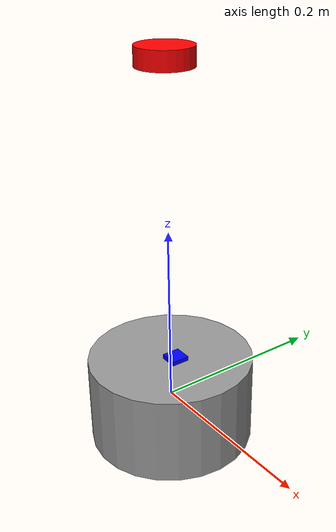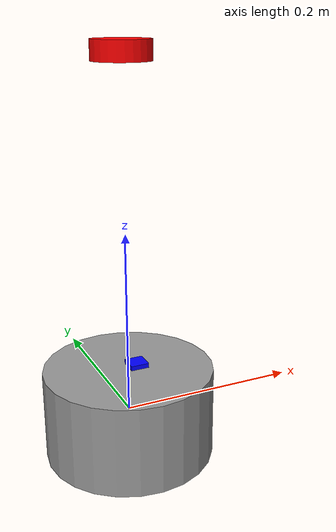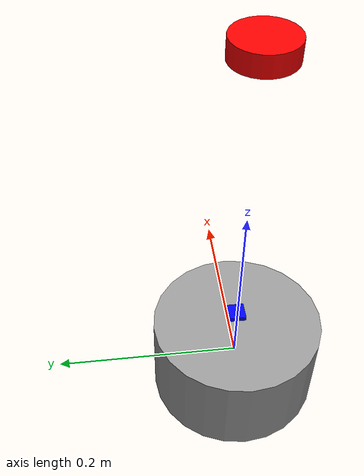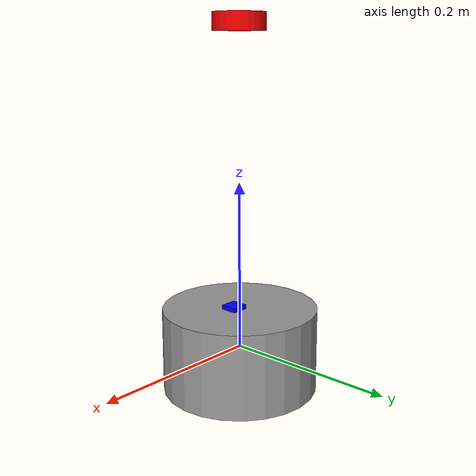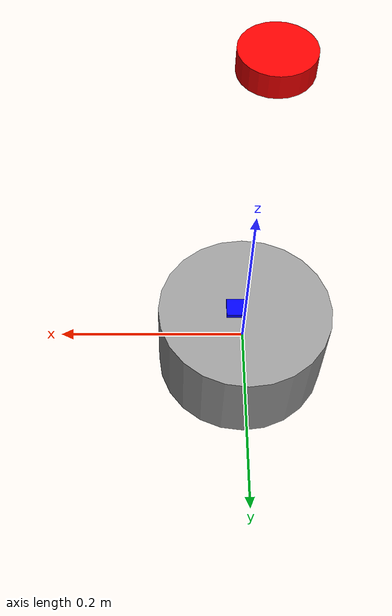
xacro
<?xml version="1.0"?>
<robot name="swerve_bot" xmlns:xacro="http://www.ros.org/wiki/xacro">

  <xacro:property name="base_radius" value="0.0925"/> <!-- 185mm diameter / 2 -->
  <xacro:property name="wheel_offset" value="0.051"/> <!-- 51mm -->
  <xacro:property name="lidar_height" value="0.19"/>
  <xacro:property name="imu_offset_x" value="0.01"/>
  <xacro:property name="imu_offset_y" value="0.0"/>
  <xacro:property name="imu_offset_z" value="0.05"/>

  <!-- Base -->
  <link name="base_link">
    <visual>
      <geometry>
        <cylinder length="0.1" radius="${base_radius}"/>
      </geometry>
      <material name="gray">
        <color rgba="0.6 0.6 0.6 1.0"/>
      </material>
    </visual>
  </link>

  <!-- Wheels -->
  <!-- Front Wheel (X+) -->
  <link name="front_wheel">
    <visual>
      <geometry>
        <cylinder length="0.02" radius="0.02"/>
      </geometry>
      <origin xyz="0 0 0" rpy="1.5708 0 0"/>
      <material name="black">
        <color rgba="0.1 0.1 0.1 1.0"/>
      </material>
    </visual>
  </link>

  <joint name="front_wheel_joint" type="continuous">
    <parent link="base_link"/>
    <child link="front_wheel"/>
    <origin xyz="${wheel_offset} 0 0" rpy="0 0 0"/>
    <axis xyz="0 0 1"/>
  </joint>

  <!-- Rear Right Wheel (X-, Y-) -->
  <link name="rear_right_wheel">
    <visual>
      <geometry>
        <cylinder length="0.02" radius="0.02"/>
      </geometry>
      <origin xyz="0 0 0" rpy="1.5708 0 0"/>
      <material name="black"/>
    </visual>
  </link>

  <joint name="rear_right_wheel_joint" type="continuous">
    <parent link="base_link"/>
    <child link="rear_right_wheel"/>
    <origin xyz="-0.0255 -0.0441 0" rpy="0 0 -2.0944"/> <!-- 120 deg in radians -->
    <axis xyz="0 0 1"/>
  </joint>

  <!-- Rear Left Wheel (X-, Y+) -->
  <link name="rear_left_wheel">
    <visual>
      <geometry>
        <cylinder length="0.02" radius="0.02"/>
      </geometry>
      <origin xyz="0 0 0" rpy="1.5708 0 0"/>
      <material name="black"/>
    </visual>
  </link>

  <joint name="rear_left_wheel_joint" type="continuous">
    <parent link="base_link"/>
    <child link="rear_left_wheel"/>
    <origin xyz="-0.0255 0.0441 0" rpy="0 0 2.0944"/>
    <axis xyz="0 0 1"/>
  </joint>

  <!-- Lidar -->
  <link name="lidar_link">
    <visual>
      <geometry>
        <cylinder radius="0.03" length="0.02"/>
      </geometry>
      <origin xyz="0 0 ${lidar_height}" rpy="0 0 0"/>
      <material name="red">
        <color rgba="1 0 0 1"/>
      </material>
    </visual>
  </link>

  <joint name="lidar_joint" type="fixed">
    <parent link="base_link"/>
    <child link="lidar_link"/>
    <origin xyz="0 0 ${lidar_height}" rpy="0 0 0"/>
  </joint>

  <!-- IMU -->
  <link name="imu_link">
    <visual>
      <geometry>
        <box size="0.02 0.02 0.01"/>
      </geometry>
      <material name="blue">
        <color rgba="0 0 1 1"/>
      </material>
    </visual>
  </link>

  <joint name="imu_joint" type="fixed">
    <parent link="base_link"/>
    <child link="imu_link"/>
    <origin xyz="${imu_offset_x} ${imu_offset_y} ${imu_offset_z}" rpy="0 0 0"/>
  </joint>

</robot>
